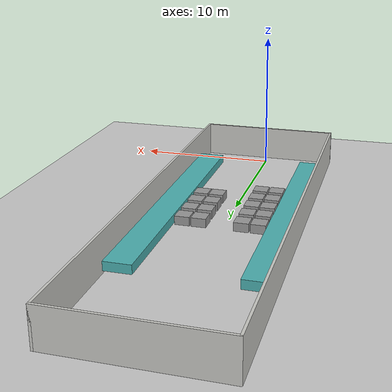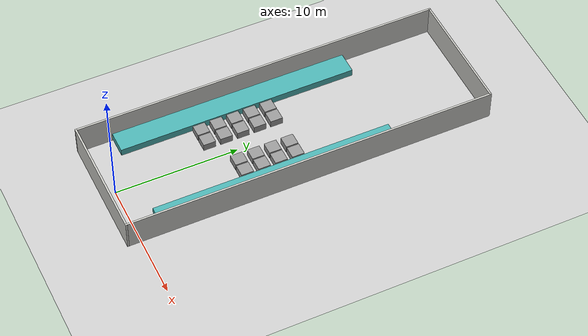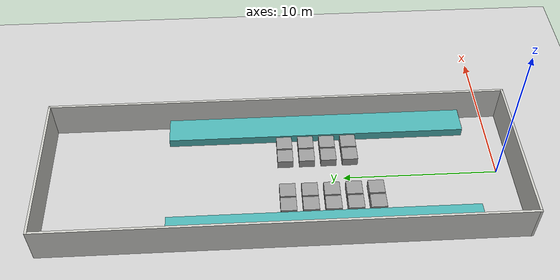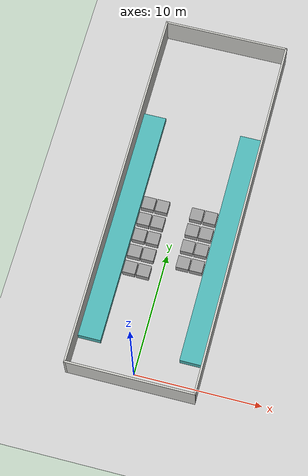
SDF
<sdf version="1.6">
 <world name="default">
  <model name="ground_plane">
   <static>1</static>
   <link name="link">
    <collision name="collision">
     <geometry><plane><normal>0 0 1</normal><size>100 100</size></plane></geometry>
     <surface>
      <contact><collide_bitmask>65535</collide_bitmask></contact>
      <friction><ode><mu>100</mu><mu2>50</mu2></ode></friction>
     </surface>
    </collision>
    <visual name="visual">
     <cast_shadows>0</cast_shadows>
     <geometry><plane><normal>0 0 1</normal><size>100 100</size></plane></geometry>
     <material>
      <script><uri>file://media/materials/scripts/gazebo.material</uri><name>Gazebo/Grey</name></script>
     </material>
    </visual>
   </link>
  </model>
  <model name="Estufa_2">
   <pose>0.00221 13.9727 0 0 -0 0</pose>
   <link name="Wall_0">
    <collision name="Wall_0_Collision">
     <geometry><box><size>30.15 0.15 2.5</size></box></geometry>
     <pose>0 0 1.25 0 -0 0</pose>
    </collision>
    <visual name="Wall_0_Visual">
     <pose>0 0 1.25 0 -0 0</pose>
     <geometry><box><size>30.15 0.15 2.5</size></box></geometry>
     <material>
      <script><uri>file://media/materials/scripts/gazebo.material</uri><name>Gazebo/CeilingTiled</name></script>
      <ambient>0.333333 0.341176 0.32549 1</ambient>
     </material>
     <meta><layer>0</layer></meta>
    </visual>
    <pose>-5 0 0 0 -0 1.5708</pose>
   </link>
   <link name="Wall_1">
    <collision name="Wall_1_Collision">
     <geometry><box><size>10.15 0.15 2.5</size></box></geometry>
     <pose>0 0 1.25 0 -0 0</pose>
    </collision>
    <visual name="Wall_1_Visual">
     <pose>0 0 1.25 0 -0 0</pose>
     <geometry><box><size>10.15 0.15 2.5</size></box></geometry>
     <material>
      <script><uri>file://media/materials/scripts/gazebo.material</uri><name>Gazebo/CeilingTiled</name></script>
      <ambient>0.333333 0.341176 0.32549 1</ambient>
     </material>
     <meta><layer>0</layer></meta>
    </visual>
    <pose>0 15 0 0 -0 0</pose>
   </link>
   <link name="Wall_2">
    <collision name="Wall_2_Collision">
     <geometry><box><size>30.15 0.15 2.5</size></box></geometry>
     <pose>0 0 1.25 0 -0 0</pose>
    </collision>
    <visual name="Wall_2_Visual">
     <pose>0 0 1.25 0 -0 0</pose>
     <geometry><box><size>30.15 0.15 2.5</size></box></geometry>
     <material>
      <script><uri>file://media/materials/scripts/gazebo.material</uri><name>Gazebo/CeilingTiled</name></script>
      <ambient>0.333333 0.341176 0.32549 1</ambient>
     </material>
     <meta><layer>0</layer></meta>
    </visual>
    <pose>5 0 0 0 -0 -1.5708</pose>
   </link>
   <link name="Wall_3">
    <collision name="Wall_3_Collision">
     <geometry><box><size>10.15 0.15 2.5</size></box></geometry>
     <pose>0 0 1.25 0 -0 0</pose>
    </collision>
    <visual name="Wall_3_Visual">
     <pose>0 0 1.25 0 -0 0</pose>
     <geometry><box><size>10.15 0.15 2.5</size></box></geometry>
     <material>
      <script><uri>file://media/materials/scripts/gazebo.material</uri><name>Gazebo/CeilingTiled</name></script>
      <ambient>0.333333 0.341176 0.32549 1</ambient>
     </material>
     <meta><layer>0</layer></meta>
    </visual>
    <pose>0 -15 0 0 -0 3.14159</pose>
   </link>
   <static>1</static>
  </model>
  <model name="Estufa-objetos">
   <link name="link_0_clone_3_clone">
    <inertial>
     <mass>1</mass>
     <inertia>
      <ixx>0.166667</ixx>
      <ixy>0</ixy>
      <ixz>0</ixz>
      <iyy>0.166667</iyy>
      <iyz>0</iyz>
      <izz>0.166667</izz>
     </inertia>
    </inertial>
    <pose>-4 6.5 0.5 0 -0 0</pose>
    <visual name="visual">
     <geometry><box><size>1.8 19.5 0.6</size></box></geometry>
     <material>
      <lighting>1</lighting>
      <script><uri>file://media/materials/scripts/gazebo.material</uri><name>Gazebo/Grey</name></script>
      <shader type="vertex"><normal_map>__default__</normal_map></shader>
      <ambient>0.3 0.7 0.7 1</ambient>
      <diffuse>0.7 0.7 0.7 1</diffuse>
      <specular>0.01 0.01 0.01 1</specular>
      <emissive>0 0 0 1</emissive>
     </material>
    </visual>
    <collision name="collision">
     <geometry><box><size>1.8 19.5 0.6</size></box></geometry>
     <surface>
      <friction>
       <ode><mu>1</mu><mu2>1</mu2><fdir1>0 0 0</fdir1><slip1>0</slip1><slip2>0</slip2></ode>
       <torsional>
        <coefficient>1</coefficient>
        <patch_radius>0</patch_radius>
        <surface_radius>0</surface_radius>
        <use_patch_radius>1</use_patch_radius>
        <ode><slip>0</slip></ode>
       </torsional>
      </friction>
      <bounce><restitution_coefficient>0</restitution_coefficient><threshold>1e+06</threshold></bounce>
      <contact>
       <collide_without_contact>0</collide_without_contact>
       <collide_without_contact_bitmask>1</collide_without_contact_bitmask>
       <collide_bitmask>1</collide_bitmask>
       <ode>
        <soft_cfm>0</soft_cfm>
        <soft_erp>0.2</soft_erp>
        <kp>1e+13</kp>
        <kd>1</kd>
        <max_vel>0.01</max_vel>
        <min_depth>0</min_depth>
       </ode>
       <bullet>
        <split_impulse>1</split_impulse>
        <split_impulse_penetration_threshold>-0.01</split_impulse_penetration_threshold>
        <soft_cfm>0</soft_cfm>
        <soft_erp>0.2</soft_erp>
        <kp>1e+13</kp>
        <kd>1</kd>
       </bullet>
      </contact>
     </surface>
    </collision>
   </link>
   <link name="link_0_clone_3_clone_clone">
    <inertial>
     <mass>1</mass>
     <inertia>
      <ixx>0.166667</ixx>
      <ixy>0</ixy>
      <ixz>0</ixz>
      <iyy>0.166667</iyy>
      <iyz>0</iyz>
      <izz>0.166667</izz>
     </inertia>
    </inertial>
    <pose>4 6.5 0.5 0 -0 0</pose>
    <visual name="visual">
     <geometry><box><size>1.8 19.5 0.6</size></box></geometry>
     <material>
      <lighting>1</lighting>
      <script><uri>file://media/materials/scripts/gazebo.material</uri><name>Gazebo/Grey</name></script>
      <shader type="vertex"><normal_map>__default__</normal_map></shader>
      <ambient>0.3 0.7 0.7 1</ambient>
      <diffuse>0.7 0.7 0.7 1</diffuse>
      <specular>0.01 0.01 0.01 1</specular>
      <emissive>0 0 0 1</emissive>
     </material>
    </visual>
    <collision name="collision">
     <geometry><box><size>1.8 19.5 0.6</size></box></geometry>
     <surface>
      <friction>
       <ode><mu>1</mu><mu2>1</mu2><fdir1>0 0 0</fdir1><slip1>0</slip1><slip2>0</slip2></ode>
       <torsional>
        <coefficient>1</coefficient>
        <patch_radius>0</patch_radius>
        <surface_radius>0</surface_radius>
        <use_patch_radius>1</use_patch_radius>
        <ode><slip>0</slip></ode>
       </torsional>
      </friction>
      <bounce><restitution_coefficient>0</restitution_coefficient><threshold>1e+06</threshold></bounce>
      <contact>
       <collide_without_contact>0</collide_without_contact>
       <collide_without_contact_bitmask>1</collide_without_contact_bitmask>
       <collide_bitmask>1</collide_bitmask>
       <ode>
        <soft_cfm>0</soft_cfm>
        <soft_erp>0.2</soft_erp>
        <kp>1e+13</kp>
        <kd>1</kd>
        <max_vel>0.01</max_vel>
        <min_depth>0</min_depth>
       </ode>
       <bullet>
        <split_impulse>1</split_impulse>
        <split_impulse_penetration_threshold>-0.01</split_impulse_penetration_threshold>
        <soft_cfm>0</soft_cfm>
        <soft_erp>0.2</soft_erp>
        <kp>1e+13</kp>
        <kd>1</kd>
       </bullet>
      </contact>
     </surface>
    </collision>
   </link>
   <link name="link_0_clone_clone_14">
    <inertial>
     <mass>1</mass>
     <inertia>
      <ixx>0.166667</ixx>
      <ixy>0</ixy>
      <ixz>0</ixz>
      <iyy>0.166667</iyy>
      <iyz>0</iyz>
      <izz>0.166667</izz>
     </inertia>
    </inertial>
    <pose>-1.4 3.1 0.5 0 -0 0</pose>
    <visual name="visual">
     <geometry><box><size>1 1 0.6</size></box></geometry>
     <material>
      <lighting>1</lighting>
      <script><uri>file://media/materials/scripts/gazebo.material</uri><name>Gazebo/Grey</name></script>
      <shader type="vertex"><normal_map>__default__</normal_map></shader>
      <ambient>0.3 0.3 0.3 1</ambient>
      <diffuse>0.7 0.7 0.7 1</diffuse>
      <specular>0.01 0.01 0.01 1</specular>
      <emissive>0 0 0 1</emissive>
     </material>
    </visual>
    <collision name="collision">
     <geometry><box><size>1 1 0.6</size></box></geometry>
     <surface>
      <friction>
       <ode><mu>1</mu><mu2>1</mu2><fdir1>0 0 0</fdir1><slip1>0</slip1><slip2>0</slip2></ode>
       <torsional>
        <coefficient>1</coefficient>
        <patch_radius>0</patch_radius>
        <surface_radius>0</surface_radius>
        <use_patch_radius>1</use_patch_radius>
        <ode><slip>0</slip></ode>
       </torsional>
      </friction>
      <bounce><restitution_coefficient>0</restitution_coefficient><threshold>1e+06</threshold></bounce>
      <contact>
       <collide_without_contact>0</collide_without_contact>
       <collide_without_contact_bitmask>1</collide_without_contact_bitmask>
       <collide_bitmask>1</collide_bitmask>
       <ode>
        <soft_cfm>0</soft_cfm>
        <soft_erp>0.2</soft_erp>
        <kp>1e+13</kp>
        <kd>1</kd>
        <max_vel>0.01</max_vel>
        <min_depth>0</min_depth>
       </ode>
       <bullet>
        <split_impulse>1</split_impulse>
        <split_impulse_penetration_threshold>-0.01</split_impulse_penetration_threshold>
        <soft_cfm>0</soft_cfm>
        <soft_erp>0.2</soft_erp>
        <kp>1e+13</kp>
        <kd>1</kd>
       </bullet>
      </contact>
     </surface>
    </collision>
   </link>
   <link name="link_0_clone_clone_15">
    <inertial>
     <mass>1</mass>
     <inertia>
      <ixx>0.166667</ixx>
      <ixy>0</ixy>
      <ixz>0</ixz>
      <iyy>0.166667</iyy>
      <iyz>0</iyz>
      <izz>0.166667</izz>
     </inertia>
    </inertial>
    <pose>-2.5 3.1 0.5 0 -0 0</pose>
    <visual name="visual">
     <geometry><box><size>1 1 0.6</size></box></geometry>
     <material>
      <lighting>1</lighting>
      <script><uri>file://media/materials/scripts/gazebo.material</uri><name>Gazebo/Grey</name></script>
      <shader type="vertex"><normal_map>__default__</normal_map></shader>
      <ambient>0.3 0.3 0.3 1</ambient>
      <diffuse>0.7 0.7 0.7 1</diffuse>
      <specular>0.01 0.01 0.01 1</specular>
      <emissive>0 0 0 1</emissive>
     </material>
    </visual>
    <collision name="collision">
     <geometry><box><size>1 1 0.6</size></box></geometry>
     <surface>
      <friction>
       <ode><mu>1</mu><mu2>1</mu2><fdir1>0 0 0</fdir1><slip1>0</slip1><slip2>0</slip2></ode>
       <torsional>
        <coefficient>1</coefficient>
        <patch_radius>0</patch_radius>
        <surface_radius>0</surface_radius>
        <use_patch_radius>1</use_patch_radius>
        <ode><slip>0</slip></ode>
       </torsional>
      </friction>
      <bounce><restitution_coefficient>0</restitution_coefficient><threshold>1e+06</threshold></bounce>
      <contact>
       <collide_without_contact>0</collide_without_contact>
       <collide_without_contact_bitmask>1</collide_without_contact_bitmask>
       <collide_bitmask>1</collide_bitmask>
       <ode>
        <soft_cfm>0</soft_cfm>
        <soft_erp>0.2</soft_erp>
        <kp>1e+13</kp>
        <kd>1</kd>
        <max_vel>0.01</max_vel>
        <min_depth>0</min_depth>
       </ode>
       <bullet>
        <split_impulse>1</split_impulse>
        <split_impulse_penetration_threshold>-0.01</split_impulse_penetration_threshold>
        <soft_cfm>0</soft_cfm>
        <soft_erp>0.2</soft_erp>
        <kp>1e+13</kp>
        <kd>1</kd>
       </bullet>
      </contact>
     </surface>
    </collision>
   </link>
   <link name="link_0_clone_clone_16">
    <inertial>
     <mass>1</mass>
     <inertia>
      <ixx>0.166667</ixx>
      <ixy>0</ixy>
      <ixz>0</ixz>
      <iyy>0.166667</iyy>
      <iyz>0</iyz>
      <izz>0.166667</izz>
     </inertia>
    </inertial>
    <pose>2.5 4.5 0.5 0 -0 0</pose>
    <visual name="visual">
     <geometry><box><size>1 1 0.6</size></box></geometry>
     <material>
      <lighting>1</lighting>
      <script><uri>file://media/materials/scripts/gazebo.material</uri><name>Gazebo/Grey</name></script>
      <shader type="vertex"><normal_map>__default__</normal_map></shader>
      <ambient>0.3 0.3 0.3 1</ambient>
      <diffuse>0.7 0.7 0.7 1</diffuse>
      <specular>0.01 0.01 0.01 1</specular>
      <emissive>0 0 0 1</emissive>
     </material>
    </visual>
    <collision name="collision">
     <geometry><box><size>1 1 0.6</size></box></geometry>
     <surface>
      <friction>
       <ode><mu>1</mu><mu2>1</mu2><fdir1>0 0 0</fdir1><slip1>0</slip1><slip2>0</slip2></ode>
       <torsional>
        <coefficient>1</coefficient>
        <patch_radius>0</patch_radius>
        <surface_radius>0</surface_radius>
        <use_patch_radius>1</use_patch_radius>
        <ode><slip>0</slip></ode>
       </torsional>
      </friction>
      <bounce><restitution_coefficient>0</restitution_coefficient><threshold>1e+06</threshold></bounce>
      <contact>
       <collide_without_contact>0</collide_without_contact>
       <collide_without_contact_bitmask>1</collide_without_contact_bitmask>
       <collide_bitmask>1</collide_bitmask>
       <ode>
        <soft_cfm>0</soft_cfm>
        <soft_erp>0.2</soft_erp>
        <kp>1e+13</kp>
        <kd>1</kd>
        <max_vel>0.01</max_vel>
        <min_depth>0</min_depth>
       </ode>
       <bullet>
        <split_impulse>1</split_impulse>
        <split_impulse_penetration_threshold>-0.01</split_impulse_penetration_threshold>
        <soft_cfm>0</soft_cfm>
        <soft_erp>0.2</soft_erp>
        <kp>1e+13</kp>
        <kd>1</kd>
       </bullet>
      </contact>
     </surface>
    </collision>
   </link>
   <link name="link_0_clone_clone_17">
    <inertial>
     <mass>1</mass>
     <inertia>
      <ixx>0.166667</ixx>
      <ixy>0</ixy>
      <ixz>0</ixz>
      <iyy>0.166667</iyy>
      <iyz>0</iyz>
      <izz>0.166667</izz>
     </inertia>
    </inertial>
    <pose>1.4 4.5 0.5 0 -0 0</pose>
    <visual name="visual">
     <geometry><box><size>1 1 0.6</size></box></geometry>
     <material>
      <lighting>1</lighting>
      <script><uri>file://media/materials/scripts/gazebo.material</uri><name>Gazebo/Grey</name></script>
      <shader type="vertex"><normal_map>__default__</normal_map></shader>
      <ambient>0.3 0.3 0.3 1</ambient>
      <diffuse>0.7 0.7 0.7 1</diffuse>
      <specular>0.01 0.01 0.01 1</specular>
      <emissive>0 0 0 1</emissive>
     </material>
    </visual>
    <collision name="collision">
     <geometry><box><size>1 1 0.6</size></box></geometry>
     <surface>
      <friction>
       <ode><mu>1</mu><mu2>1</mu2><fdir1>0 0 0</fdir1><slip1>0</slip1><slip2>0</slip2></ode>
       <torsional>
        <coefficient>1</coefficient>
        <patch_radius>0</patch_radius>
        <surface_radius>0</surface_radius>
        <use_patch_radius>1</use_patch_radius>
        <ode><slip>0</slip></ode>
       </torsional>
      </friction>
      <bounce><restitution_coefficient>0</restitution_coefficient><threshold>1e+06</threshold></bounce>
      <contact>
       <collide_without_contact>0</collide_without_contact>
       <collide_without_contact_bitmask>1</collide_without_contact_bitmask>
       <collide_bitmask>1</collide_bitmask>
       <ode>
        <soft_cfm>0</soft_cfm>
        <soft_erp>0.2</soft_erp>
        <kp>1e+13</kp>
        <kd>1</kd>
        <max_vel>0.01</max_vel>
        <min_depth>0</min_depth>
       </ode>
       <bullet>
        <split_impulse>1</split_impulse>
        <split_impulse_penetration_threshold>-0.01</split_impulse_penetration_threshold>
        <soft_cfm>0</soft_cfm>
        <soft_erp>0.2</soft_erp>
        <kp>1e+13</kp>
        <kd>1</kd>
       </bullet>
      </contact>
     </surface>
    </collision>
   </link>
   <link name="link_0_clone_clone_18">
    <inertial>
     <mass>1</mass>
     <inertia>
      <ixx>0.166667</ixx>
      <ixy>0</ixy>
      <ixz>0</ixz>
      <iyy>0.166667</iyy>
      <iyz>0</iyz>
      <izz>0.166667</izz>
     </inertia>
    </inertial>
    <pose>-1.4 4.5 0.5 0 -0 0</pose>
    <visual name="visual">
     <geometry><box><size>1 1 0.6</size></box></geometry>
     <material>
      <lighting>1</lighting>
      <script><uri>file://media/materials/scripts/gazebo.material</uri><name>Gazebo/Grey</name></script>
      <shader type="vertex"><normal_map>__default__</normal_map></shader>
      <ambient>0.3 0.3 0.3 1</ambient>
      <diffuse>0.7 0.7 0.7 1</diffuse>
      <specular>0.01 0.01 0.01 1</specular>
      <emissive>0 0 0 1</emissive>
     </material>
    </visual>
    <collision name="collision">
     <geometry><box><size>1 1 0.6</size></box></geometry>
     <surface>
      <friction>
       <ode><mu>1</mu><mu2>1</mu2><fdir1>0 0 0</fdir1><slip1>0</slip1><slip2>0</slip2></ode>
       <torsional>
        <coefficient>1</coefficient>
        <patch_radius>0</patch_radius>
        <surface_radius>0</surface_radius>
        <use_patch_radius>1</use_patch_radius>
        <ode><slip>0</slip></ode>
       </torsional>
      </friction>
      <bounce><restitution_coefficient>0</restitution_coefficient><threshold>1e+06</threshold></bounce>
      <contact>
       <collide_without_contact>0</collide_without_contact>
       <collide_without_contact_bitmask>1</collide_without_contact_bitmask>
       <collide_bitmask>1</collide_bitmask>
       <ode>
        <soft_cfm>0</soft_cfm>
        <soft_erp>0.2</soft_erp>
        <kp>1e+13</kp>
        <kd>1</kd>
        <max_vel>0.01</max_vel>
        <min_depth>0</min_depth>
       </ode>
       <bullet>
        <split_impulse>1</split_impulse>
        <split_impulse_penetration_threshold>-0.01</split_impulse_penetration_threshold>
        <soft_cfm>0</soft_cfm>
        <soft_erp>0.2</soft_erp>
        <kp>1e+13</kp>
        <kd>1</kd>
       </bullet>
      </contact>
     </surface>
    </collision>
   </link>
   <link name="link_0_clone_clone_19">
    <inertial>
     <mass>1</mass>
     <inertia>
      <ixx>0.166667</ixx>
      <ixy>0</ixy>
      <ixz>0</ixz>
      <iyy>0.166667</iyy>
      <iyz>0</iyz>
      <izz>0.166667</izz>
     </inertia>
    </inertial>
    <pose>-2.5 4.5 0.5 0 -0 0</pose>
    <visual name="visual">
     <geometry><box><size>1 1 0.6</size></box></geometry>
     <material>
      <lighting>1</lighting>
      <script><uri>file://media/materials/scripts/gazebo.material</uri><name>Gazebo/Grey</name></script>
      <shader type="vertex"><normal_map>__default__</normal_map></shader>
      <ambient>0.3 0.3 0.3 1</ambient>
      <diffuse>0.7 0.7 0.7 1</diffuse>
      <specular>0.01 0.01 0.01 1</specular>
      <emissive>0 0 0 1</emissive>
     </material>
    </visual>
    <collision name="collision">
     <geometry><box><size>1 1 0.6</size></box></geometry>
     <surface>
      <friction>
       <ode><mu>1</mu><mu2>1</mu2><fdir1>0 0 0</fdir1><slip1>0</slip1><slip2>0</slip2></ode>
       <torsional>
        <coefficient>1</coefficient>
        <patch_radius>0</patch_radius>
        <surface_radius>0</surface_radius>
        <use_patch_radius>1</use_patch_radius>
        <ode><slip>0</slip></ode>
       </torsional>
      </friction>
      <bounce><restitution_coefficient>0</restitution_coefficient><threshold>1e+06</threshold></bounce>
      <contact>
       <collide_without_contact>0</collide_without_contact>
       <collide_without_contact_bitmask>1</collide_without_contact_bitmask>
       <collide_bitmask>1</collide_bitmask>
       <ode>
        <soft_cfm>0</soft_cfm>
        <soft_erp>0.2</soft_erp>
        <kp>1e+13</kp>
        <kd>1</kd>
        <max_vel>0.01</max_vel>
        <min_depth>0</min_depth>
       </ode>
       <bullet>
        <split_impulse>1</split_impulse>
        <split_impulse_penetration_threshold>-0.01</split_impulse_penetration_threshold>
        <soft_cfm>0</soft_cfm>
        <soft_erp>0.2</soft_erp>
        <kp>1e+13</kp>
        <kd>1</kd>
       </bullet>
      </contact>
     </surface>
    </collision>
   </link>
   <link name="link_0_clone_clone_20">
    <inertial>
     <mass>1</mass>
     <inertia>
      <ixx>0.166667</ixx>
      <ixy>0</ixy>
      <ixz>0</ixz>
      <iyy>0.166667</iyy>
      <iyz>0</iyz>
      <izz>0.166667</izz>
     </inertia>
    </inertial>
    <pose>2.5 5.9 0.5 0 -0 0</pose>
    <visual name="visual">
     <geometry><box><size>1 1 0.6</size></box></geometry>
     <material>
      <lighting>1</lighting>
      <script><uri>file://media/materials/scripts/gazebo.material</uri><name>Gazebo/Grey</name></script>
      <shader type="vertex"><normal_map>__default__</normal_map></shader>
      <ambient>0.3 0.3 0.3 1</ambient>
      <diffuse>0.7 0.7 0.7 1</diffuse>
      <specular>0.01 0.01 0.01 1</specular>
      <emissive>0 0 0 1</emissive>
     </material>
    </visual>
    <collision name="collision">
     <geometry><box><size>1 1 0.6</size></box></geometry>
     <surface>
      <friction>
       <ode><mu>1</mu><mu2>1</mu2><fdir1>0 0 0</fdir1><slip1>0</slip1><slip2>0</slip2></ode>
       <torsional>
        <coefficient>1</coefficient>
        <patch_radius>0</patch_radius>
        <surface_radius>0</surface_radius>
        <use_patch_radius>1</use_patch_radius>
        <ode><slip>0</slip></ode>
       </torsional>
      </friction>
      <bounce><restitution_coefficient>0</restitution_coefficient><threshold>1e+06</threshold></bounce>
      <contact>
       <collide_without_contact>0</collide_without_contact>
       <collide_without_contact_bitmask>1</collide_without_contact_bitmask>
       <collide_bitmask>1</collide_bitmask>
       <ode>
        <soft_cfm>0</soft_cfm>
        <soft_erp>0.2</soft_erp>
        <kp>1e+13</kp>
        <kd>1</kd>
        <max_vel>0.01</max_vel>
        <min_depth>0</min_depth>
       </ode>
       <bullet>
        <split_impulse>1</split_impulse>
        <split_impulse_penetration_threshold>-0.01</split_impulse_penetration_threshold>
        <soft_cfm>0</soft_cfm>
        <soft_erp>0.2</soft_erp>
        <kp>1e+13</kp>
        <kd>1</kd>
       </bullet>
      </contact>
     </surface>
    </collision>
   </link>
   <link name="link_0_clone_clone_21">
    <inertial>
     <mass>1</mass>
     <inertia>
      <ixx>0.166667</ixx>
      <ixy>0</ixy>
      <ixz>0</ixz>
      <iyy>0.166667</iyy>
      <iyz>0</iyz>
      <izz>0.166667</izz>
     </inertia>
    </inertial>
    <pose>1.4 5.9 0.5 0 -0 0</pose>
    <visual name="visual">
     <geometry><box><size>1 1 0.6</size></box></geometry>
     <material>
      <lighting>1</lighting>
      <script><uri>file://media/materials/scripts/gazebo.material</uri><name>Gazebo/Grey</name></script>
      <shader type="vertex"><normal_map>__default__</normal_map></shader>
      <ambient>0.3 0.3 0.3 1</ambient>
      <diffuse>0.7 0.7 0.7 1</diffuse>
      <specular>0.01 0.01 0.01 1</specular>
      <emissive>0 0 0 1</emissive>
     </material>
    </visual>
    <collision name="collision">
     <geometry><box><size>1 1 0.6</size></box></geometry>
     <surface>
      <friction>
       <ode><mu>1</mu><mu2>1</mu2><fdir1>0 0 0</fdir1><slip1>0</slip1><slip2>0</slip2></ode>
       <torsional>
        <coefficient>1</coefficient>
        <patch_radius>0</patch_radius>
        <surface_radius>0</surface_radius>
        <use_patch_radius>1</use_patch_radius>
        <ode><slip>0</slip></ode>
       </torsional>
      </friction>
      <bounce><restitution_coefficient>0</restitution_coefficient><threshold>1e+06</threshold></bounce>
      <contact>
       <collide_without_contact>0</collide_without_contact>
       <collide_without_contact_bitmask>1</collide_without_contact_bitmask>
       <collide_bitmask>1</collide_bitmask>
       <ode>
        <soft_cfm>0</soft_cfm>
        <soft_erp>0.2</soft_erp>
        <kp>1e+13</kp>
        <kd>1</kd>
        <max_vel>0.01</max_vel>
        <min_depth>0</min_depth>
       </ode>
       <bullet>
        <split_impulse>1</split_impulse>
        <split_impulse_penetration_threshold>-0.01</split_impulse_penetration_threshold>
        <soft_cfm>0</soft_cfm>
        <soft_erp>0.2</soft_erp>
        <kp>1e+13</kp>
        <kd>1</kd>
       </bullet>
      </contact>
     </surface>
    </collision>
   </link>
   <link name="link_0_clone_clone_22">
    <inertial>
     <mass>1</mass>
     <inertia>
      <ixx>0.166667</ixx>
      <ixy>0</ixy>
      <ixz>0</ixz>
      <iyy>0.166667</iyy>
      <iyz>0</iyz>
      <izz>0.166667</izz>
     </inertia>
    </inertial>
    <pose>-1.4 5.9 0.5 0 -0 0</pose>
    <visual name="visual">
     <geometry><box><size>1 1 0.6</size></box></geometry>
     <material>
      <lighting>1</lighting>
      <script><uri>file://media/materials/scripts/gazebo.material</uri><name>Gazebo/Grey</name></script>
      <shader type="vertex"><normal_map>__default__</normal_map></shader>
      <ambient>0.3 0.3 0.3 1</ambient>
      <diffuse>0.7 0.7 0.7 1</diffuse>
      <specular>0.01 0.01 0.01 1</specular>
      <emissive>0 0 0 1</emissive>
     </material>
    </visual>
    <collision name="collision">
     <geometry><box><size>1 1 0.6</size></box></geometry>
     <surface>
      <friction>
       <ode><mu>1</mu><mu2>1</mu2><fdir1>0 0 0</fdir1><slip1>0</slip1><slip2>0</slip2></ode>
       <torsional>
        <coefficient>1</coefficient>
        <patch_radius>0</patch_radius>
        <surface_radius>0</surface_radius>
        <use_patch_radius>1</use_patch_radius>
        <ode><slip>0</slip></ode>
       </torsional>
      </friction>
      <bounce><restitution_coefficient>0</restitution_coefficient><threshold>1e+06</threshold></bounce>
      <contact>
       <collide_without_contact>0</collide_without_contact>
       <collide_without_contact_bitmask>1</collide_without_contact_bitmask>
       <collide_bitmask>1</collide_bitmask>
       <ode>
        <soft_cfm>0</soft_cfm>
        <soft_erp>0.2</soft_erp>
        <kp>1e+13</kp>
        <kd>1</kd>
        <max_vel>0.01</max_vel>
        <min_depth>0</min_depth>
       </ode>
       <bullet>
        <split_impulse>1</split_impulse>
        <split_impulse_penetration_threshold>-0.01</split_impulse_penetration_threshold>
        <soft_cfm>0</soft_cfm>
        <soft_erp>0.2</soft_erp>
        <kp>1e+13</kp>
        <kd>1</kd>
       </bullet>
      </contact>
     </surface>
    </collision>
   </link>
   <link name="link_0_clone_clone_23">
    <inertial>
     <mass>1</mass>
     <inertia>
      <ixx>0.166667</ixx>
      <ixy>0</ixy>
      <ixz>0</ixz>
      <iyy>0.166667</iyy>
      <iyz>0</iyz>
      <izz>0.166667</izz>
     </inertia>
    </inertial>
    <pose>-2.5 5.9 0.5 0 -0 0</pose>
    <visual name="visual">
     <geometry><box><size>1 1 0.6</size></box></geometry>
     <material>
      <lighting>1</lighting>
      <script><uri>file://media/materials/scripts/gazebo.material</uri><name>Gazebo/Grey</name></script>
      <shader type="vertex"><normal_map>__default__</normal_map></shader>
      <ambient>0.3 0.3 0.3 1</ambient>
      <diffuse>0.7 0.7 0.7 1</diffuse>
      <specular>0.01 0.01 0.01 1</specular>
      <emissive>0 0 0 1</emissive>
     </material>
    </visual>
    <collision name="collision">
     <geometry><box><size>1 1 0.6</size></box></geometry>
     <surface>
      <friction>
       <ode><mu>1</mu><mu2>1</mu2><fdir1>0 0 0</fdir1><slip1>0</slip1><slip2>0</slip2></ode>
       <torsional>
        <coefficient>1</coefficient>
        <patch_radius>0</patch_radius>
        <surface_radius>0</surface_radius>
        <use_patch_radius>1</use_patch_radius>
        <ode><slip>0</slip></ode>
       </torsional>
      </friction>
      <bounce><restitution_coefficient>0</restitution_coefficient><threshold>1e+06</threshold></bounce>
      <contact>
       <collide_without_contact>0</collide_without_contact>
       <collide_without_contact_bitmask>1</collide_without_contact_bitmask>
       <collide_bitmask>1</collide_bitmask>
       <ode>
        <soft_cfm>0</soft_cfm>
        <soft_erp>0.2</soft_erp>
        <kp>1e+13</kp>
        <kd>1</kd>
        <max_vel>0.01</max_vel>
        <min_depth>0</min_depth>
       </ode>
       <bullet>
        <split_impulse>1</split_impulse>
        <split_impulse_penetration_threshold>-0.01</split_impulse_penetration_threshold>
        <soft_cfm>0</soft_cfm>
        <soft_erp>0.2</soft_erp>
        <kp>1e+13</kp>
        <kd>1</kd>
       </bullet>
      </contact>
     </surface>
    </collision>
   </link>
   <link name="link_0_clone_clone_24">
    <inertial>
     <mass>1</mass>
     <inertia>
      <ixx>0.166667</ixx>
      <ixy>0</ixy>
      <ixz>0</ixz>
      <iyy>0.166667</iyy>
      <iyz>0</iyz>
      <izz>0.166667</izz>
     </inertia>
    </inertial>
    <pose>2.5 7.3 0.5 0 -0 0</pose>
    <visual name="visual">
     <geometry><box><size>1 1 0.6</size></box></geometry>
     <material>
      <lighting>1</lighting>
      <script><uri>file://media/materials/scripts/gazebo.material</uri><name>Gazebo/Grey</name></script>
      <shader type="vertex"><normal_map>__default__</normal_map></shader>
      <ambient>0.3 0.3 0.3 1</ambient>
      <diffuse>0.7 0.7 0.7 1</diffuse>
      <specular>0.01 0.01 0.01 1</specular>
      <emissive>0 0 0 1</emissive>
     </material>
    </visual>
    <collision name="collision">
     <geometry><box><size>1 1 0.6</size></box></geometry>
     <surface>
      <friction>
       <ode><mu>1</mu><mu2>1</mu2><fdir1>0 0 0</fdir1><slip1>0</slip1><slip2>0</slip2></ode>
       <torsional>
        <coefficient>1</coefficient>
        <patch_radius>0</patch_radius>
        <surface_radius>0</surface_radius>
        <use_patch_radius>1</use_patch_radius>
        <ode><slip>0</slip></ode>
       </torsional>
      </friction>
      <bounce><restitution_coefficient>0</restitution_coefficient><threshold>1e+06</threshold></bounce>
      <contact>
       <collide_without_contact>0</collide_without_contact>
       <collide_without_contact_bitmask>1</collide_without_contact_bitmask>
       <collide_bitmask>1</collide_bitmask>
       <ode>
        <soft_cfm>0</soft_cfm>
        <soft_erp>0.2</soft_erp>
        <kp>1e+13</kp>
        <kd>1</kd>
        <max_vel>0.01</max_vel>
        <min_depth>0</min_depth>
       </ode>
       <bullet>
        <split_impulse>1</split_impulse>
        <split_impulse_penetration_threshold>-0.01</split_impulse_penetration_threshold>
        <soft_cfm>0</soft_cfm>
        <soft_erp>0.2</soft_erp>
        <kp>1e+13</kp>
        <kd>1</kd>
       </bullet>
      </contact>
     </surface>
    </collision>
   </link>
   <link name="link_0_clone_clone_25">
    <inertial>
     <mass>1</mass>
     <inertia>
      <ixx>0.166667</ixx>
      <ixy>0</ixy>
      <ixz>0</ixz>
      <iyy>0.166667</iyy>
      <iyz>0</iyz>
      <izz>0.166667</izz>
     </inertia>
    </inertial>
    <pose>1.4 7.3 0.5 0 -0 0</pose>
    <visual name="visual">
     <geometry><box><size>1 1 0.6</size></box></geometry>
     <material>
      <lighting>1</lighting>
      <script><uri>file://media/materials/scripts/gazebo.material</uri><name>Gazebo/Grey</name></script>
      <shader type="vertex"><normal_map>__default__</normal_map></shader>
      <ambient>0.3 0.3 0.3 1</ambient>
      <diffuse>0.7 0.7 0.7 1</diffuse>
      <specular>0.01 0.01 0.01 1</specular>
      <emissive>0 0 0 1</emissive>
     </material>
    </visual>
    <collision name="collision">
     <geometry><box><size>1 1 0.6</size></box></geometry>
     <surface>
      <friction>
       <ode><mu>1</mu><mu2>1</mu2><fdir1>0 0 0</fdir1><slip1>0</slip1><slip2>0</slip2></ode>
       <torsional>
        <coefficient>1</coefficient>
        <patch_radius>0</patch_radius>
        <surface_radius>0</surface_radius>
        <use_patch_radius>1</use_patch_radius>
        <ode><slip>0</slip></ode>
       </torsional>
      </friction>
      <bounce><restitution_coefficient>0</restitution_coefficient><threshold>1e+06</threshold></bounce>
      <contact>
       <collide_without_contact>0</collide_without_contact>
       <collide_without_contact_bitmask>1</collide_without_contact_bitmask>
       <collide_bitmask>1</collide_bitmask>
       <ode>
        <soft_cfm>0</soft_cfm>
        <soft_erp>0.2</soft_erp>
        <kp>1e+13</kp>
        <kd>1</kd>
        <max_vel>0.01</max_vel>
        <min_depth>0</min_depth>
       </ode>
       <bullet>
        <split_impulse>1</split_impulse>
        <split_impulse_penetration_threshold>-0.01</split_impulse_penetration_threshold>
        <soft_cfm>0</soft_cfm>
        <soft_erp>0.2</soft_erp>
        <kp>1e+13</kp>
        <kd>1</kd>
       </bullet>
      </contact>
     </surface>
    </collision>
   </link>
   <link name="link_0_clone_clone_26">
    <inertial>
     <mass>1</mass>
     <inertia>
      <ixx>0.166667</ixx>
      <ixy>0</ixy>
      <ixz>0</ixz>
      <iyy>0.166667</iyy>
      <iyz>0</iyz>
      <izz>0.166667</izz>
     </inertia>
    </inertial>
    <pose>-1.4 7.3 0.5 0 -0 0</pose>
    <visual name="visual">
     <geometry><box><size>1 1 0.6</size></box></geometry>
     <material>
      <lighting>1</lighting>
      <script><uri>file://media/materials/scripts/gazebo.material</uri><name>Gazebo/Grey</name></script>
      <shader type="vertex"><normal_map>__default__</normal_map></shader>
      <ambient>0.3 0.3 0.3 1</ambient>
      <diffuse>0.7 0.7 0.7 1</diffuse>
      <specular>0.01 0.01 0.01 1</specular>
      <emissive>0 0 0 1</emissive>
     </material>
    </visual>
    <collision name="collision">
     <geometry><box><size>1 1 0.6</size></box></geometry>
     <surface>
      <friction>
       <ode><mu>1</mu><mu2>1</mu2><fdir1>0 0 0</fdir1><slip1>0</slip1><slip2>0</slip2></ode>
       <torsional>
        <coefficient>1</coefficient>
        <patch_radius>0</patch_radius>
        <surface_radius>0</surface_radius>
        <use_patch_radius>1</use_patch_radius>
        <ode><slip>0</slip></ode>
       </torsional>
      </friction>
      <bounce><restitution_coefficient>0</restitution_coefficient><threshold>1e+06</threshold></bounce>
      <contact>
       <collide_without_contact>0</collide_without_contact>
       <collide_without_contact_bitmask>1</collide_without_contact_bitmask>
       <collide_bitmask>1</collide_bitmask>
       <ode>
        <soft_cfm>0</soft_cfm>
        <soft_erp>0.2</soft_erp>
        <kp>1e+13</kp>
        <kd>1</kd>
        <max_vel>0.01</max_vel>
        <min_depth>0</min_depth>
       </ode>
       <bullet>
        <split_impulse>1</split_impulse>
        <split_impulse_penetration_threshold>-0.01</split_impulse_penetration_threshold>
        <soft_cfm>0</soft_cfm>
        <soft_erp>0.2</soft_erp>
        <kp>1e+13</kp>
        <kd>1</kd>
       </bullet>
      </contact>
     </surface>
    </collision>
   </link>
   <link name="link_0_clone_clone_27">
    <inertial>
     <mass>1</mass>
     <inertia>
      <ixx>0.166667</ixx>
      <ixy>0</ixy>
      <ixz>0</ixz>
      <iyy>0.166667</iyy>
      <iyz>0</iyz>
      <izz>0.166667</izz>
     </inertia>
    </inertial>
    <pose>-2.5 7.3 0.5 0 -0 0</pose>
    <visual name="visual">
     <geometry><box><size>1 1 0.6</size></box></geometry>
     <material>
      <lighting>1</lighting>
      <script><uri>file://media/materials/scripts/gazebo.material</uri><name>Gazebo/Grey</name></script>
      <shader type="vertex"><normal_map>__default__</normal_map></shader>
      <ambient>0.3 0.3 0.3 1</ambient>
      <diffuse>0.7 0.7 0.7 1</diffuse>
      <specular>0.01 0.01 0.01 1</specular>
      <emissive>0 0 0 1</emissive>
     </material>
    </visual>
    <collision name="collision">
     <geometry><box><size>1 1 0.6</size></box></geometry>
     <surface>
      <friction>
       <ode><mu>1</mu><mu2>1</mu2><fdir1>0 0 0</fdir1><slip1>0</slip1><slip2>0</slip2></ode>
       <torsional>
        <coefficient>1</coefficient>
        <patch_radius>0</patch_radius>
        <surface_radius>0</surface_radius>
        <use_patch_radius>1</use_patch_radius>
        <ode><slip>0</slip></ode>
       </torsional>
      </friction>
      <bounce><restitution_coefficient>0</restitution_coefficient><threshold>1e+06</threshold></bounce>
      <contact>
       <collide_without_contact>0</collide_without_contact>
       <collide_without_contact_bitmask>1</collide_without_contact_bitmask>
       <collide_bitmask>1</collide_bitmask>
       <ode>
        <soft_cfm>0</soft_cfm>
        <soft_erp>0.2</soft_erp>
        <kp>1e+13</kp>
        <kd>1</kd>
        <max_vel>0.01</max_vel>
        <min_depth>0</min_depth>
       </ode>
       <bullet>
        <split_impulse>1</split_impulse>
        <split_impulse_penetration_threshold>-0.01</split_impulse_penetration_threshold>
        <soft_cfm>0</soft_cfm>
        <soft_erp>0.2</soft_erp>
        <kp>1e+13</kp>
        <kd>1</kd>
       </bullet>
      </contact>
     </surface>
    </collision>
   </link>
   <link name="link_0_clone_clone_28">
    <inertial>
     <mass>1</mass>
     <inertia>
      <ixx>0.166667</ixx>
      <ixy>0</ixy>
      <ixz>0</ixz>
      <iyy>0.166667</iyy>
      <iyz>0</iyz>
      <izz>0.166667</izz>
     </inertia>
    </inertial>
    <pose>2.5 8.7 0.5 0 -0 0</pose>
    <visual name="visual">
     <geometry><box><size>1 1 0.6</size></box></geometry>
     <material>
      <lighting>1</lighting>
      <script><uri>file://media/materials/scripts/gazebo.material</uri><name>Gazebo/Grey</name></script>
      <shader type="vertex"><normal_map>__default__</normal_map></shader>
      <ambient>0.3 0.3 0.3 1</ambient>
      <diffuse>0.7 0.7 0.7 1</diffuse>
      <specular>0.01 0.01 0.01 1</specular>
      <emissive>0 0 0 1</emissive>
     </material>
    </visual>
    <collision name="collision">
     <geometry><box><size>1 1 0.6</size></box></geometry>
     <surface>
      <friction>
       <ode><mu>1</mu><mu2>1</mu2><fdir1>0 0 0</fdir1><slip1>0</slip1><slip2>0</slip2></ode>
       <torsional>
        <coefficient>1</coefficient>
        <patch_radius>0</patch_radius>
        <surface_radius>0</surface_radius>
        <use_patch_radius>1</use_patch_radius>
        <ode><slip>0</slip></ode>
       </torsional>
      </friction>
      <bounce><restitution_coefficient>0</restitution_coefficient><threshold>1e+06</threshold></bounce>
      <contact>
       <collide_without_contact>0</collide_without_contact>
       <collide_without_contact_bitmask>1</collide_without_contact_bitmask>
       <collide_bitmask>1</collide_bitmask>
       <ode>
        <soft_cfm>0</soft_cfm>
        <soft_erp>0.2</soft_erp>
        <kp>1e+13</kp>
        <kd>1</kd>
        <max_vel>0.01</max_vel>
        <min_depth>0</min_depth>
       </ode>
       <bullet>
        <split_impulse>1</split_impulse>
        <split_impulse_penetration_threshold>-0.01</split_impulse_penetration_threshold>
        <soft_cfm>0</soft_cfm>
        <soft_erp>0.2</soft_erp>
        <kp>1e+13</kp>
        <kd>1</kd>
       </bullet>
      </contact>
     </surface>
    </collision>
   </link>
   <link name="link_0_clone_clone_29">
    <inertial>
     <mass>1</mass>
     <inertia>
      <ixx>0.166667</ixx>
      <ixy>0</ixy>
      <ixz>0</ixz>
      <iyy>0.166667</iyy>
      <iyz>0</iyz>
      <izz>0.166667</izz>
     </inertia>
    </inertial>
    <pose>1.4 8.7 0.5 0 -0 0</pose>
    <visual name="visual">
     <geometry><box><size>1 1 0.6</size></box></geometry>
     <material>
      <lighting>1</lighting>
      <script><uri>file://media/materials/scripts/gazebo.material</uri><name>Gazebo/Grey</name></script>
      <shader type="vertex"><normal_map>__default__</normal_map></shader>
      <ambient>0.3 0.3 0.3 1</ambient>
      <diffuse>0.7 0.7 0.7 1</diffuse>
      <specular>0.01 0.01 0.01 1</specular>
      <emissive>0 0 0 1</emissive>
     </material>
    </visual>
    <collision name="collision">
     <geometry><box><size>1 1 0.6</size></box></geometry>
     <surface>
      <friction>
       <ode><mu>1</mu><mu2>1</mu2><fdir1>0 0 0</fdir1><slip1>0</slip1><slip2>0</slip2></ode>
       <torsional>
        <coefficient>1</coefficient>
        <patch_radius>0</patch_radius>
        <surface_radius>0</surface_radius>
        <use_patch_radius>1</use_patch_radius>
        <ode><slip>0</slip></ode>
       </torsional>
      </friction>
      <bounce><restitution_coefficient>0</restitution_coefficient><threshold>1e+06</threshold></bounce>
      <contact>
       <collide_without_contact>0</collide_without_contact>
       <collide_without_contact_bitmask>1</collide_without_contact_bitmask>
       <collide_bitmask>1</collide_bitmask>
       <ode>
        <soft_cfm>0</soft_cfm>
        <soft_erp>0.2</soft_erp>
        <kp>1e+13</kp>
        <kd>1</kd>
        <max_vel>0.01</max_vel>
        <min_depth>0</min_depth>
       </ode>
       <bullet>
        <split_impulse>1</split_impulse>
        <split_impulse_penetration_threshold>-0.01</split_impulse_penetration_threshold>
        <soft_cfm>0</soft_cfm>
        <soft_erp>0.2</soft_erp>
        <kp>1e+13</kp>
        <kd>1</kd>
       </bullet>
      </contact>
     </surface>
    </collision>
   </link>
   <link name="link_0_clone_clone_30">
    <inertial>
     <mass>1</mass>
     <inertia>
      <ixx>0.166667</ixx>
      <ixy>0</ixy>
      <ixz>0</ixz>
      <iyy>0.166667</iyy>
      <iyz>0</iyz>
      <izz>0.166667</izz>
     </inertia>
    </inertial>
    <pose>-1.4 8.7 0.5 0 -0 0</pose>
    <visual name="visual">
     <geometry><box><size>1 1 0.6</size></box></geometry>
     <material>
      <lighting>1</lighting>
      <script><uri>file://media/materials/scripts/gazebo.material</uri><name>Gazebo/Grey</name></script>
      <shader type="vertex"><normal_map>__default__</normal_map></shader>
      <ambient>0.3 0.3 0.3 1</ambient>
      <diffuse>0.7 0.7 0.7 1</diffuse>
      <specular>0.01 0.01 0.01 1</specular>
      <emissive>0 0 0 1</emissive>
     </material>
    </visual>
    <collision name="collision">
     <geometry><box><size>1 1 0.6</size></box></geometry>
     <surface>
      <friction>
       <ode><mu>1</mu><mu2>1</mu2><fdir1>0 0 0</fdir1><slip1>0</slip1><slip2>0</slip2></ode>
       <torsional>
        <coefficient>1</coefficient>
        <patch_radius>0</patch_radius>
        <surface_radius>0</surface_radius>
        <use_patch_radius>1</use_patch_radius>
        <ode><slip>0</slip></ode>
       </torsional>
      </friction>
      <bounce><restitution_coefficient>0</restitution_coefficient><threshold>1e+06</threshold></bounce>
      <contact>
       <collide_without_contact>0</collide_without_contact>
       <collide_without_contact_bitmask>1</collide_without_contact_bitmask>
       <collide_bitmask>1</collide_bitmask>
       <ode>
        <soft_cfm>0</soft_cfm>
        <soft_erp>0.2</soft_erp>
        <kp>1e+13</kp>
        <kd>1</kd>
        <max_vel>0.01</max_vel>
        <min_depth>0</min_depth>
       </ode>
       <bullet>
        <split_impulse>1</split_impulse>
        <split_impulse_penetration_threshold>-0.01</split_impulse_penetration_threshold>
        <soft_cfm>0</soft_cfm>
        <soft_erp>0.2</soft_erp>
        <kp>1e+13</kp>
        <kd>1</kd>
       </bullet>
      </contact>
     </surface>
    </collision>
   </link>
   <link name="link_0_clone_clone_31">
    <inertial>
     <mass>1</mass>
     <inertia>
      <ixx>0.166667</ixx>
      <ixy>0</ixy>
      <ixz>0</ixz>
      <iyy>0.166667</iyy>
      <iyz>0</iyz>
      <izz>0.166667</izz>
     </inertia>
    </inertial>
    <pose>-2.5 8.7 0.5 0 -0 0</pose>
    <visual name="visual">
     <geometry><box><size>1 1 0.6</size></box></geometry>
     <material>
      <lighting>1</lighting>
      <script><uri>file://media/materials/scripts/gazebo.material</uri><name>Gazebo/Grey</name></script>
      <shader type="vertex"><normal_map>__default__</normal_map></shader>
      <ambient>0.3 0.3 0.3 1</ambient>
      <diffuse>0.7 0.7 0.7 1</diffuse>
      <specular>0.01 0.01 0.01 1</specular>
      <emissive>0 0 0 1</emissive>
     </material>
    </visual>
    <collision name="collision">
     <geometry><box><size>1 1 0.6</size></box></geometry>
     <surface>
      <friction>
       <ode><mu>1</mu><mu2>1</mu2><fdir1>0 0 0</fdir1><slip1>0</slip1><slip2>0</slip2></ode>
       <torsional>
        <coefficient>1</coefficient>
        <patch_radius>0</patch_radius>
        <surface_radius>0</surface_radius>
        <use_patch_radius>1</use_patch_radius>
        <ode><slip>0</slip></ode>
       </torsional>
      </friction>
      <bounce><restitution_coefficient>0</restitution_coefficient><threshold>1e+06</threshold></bounce>
      <contact>
       <collide_without_contact>0</collide_without_contact>
       <collide_without_contact_bitmask>1</collide_without_contact_bitmask>
       <collide_bitmask>1</collide_bitmask>
       <ode>
        <soft_cfm>0</soft_cfm>
        <soft_erp>0.2</soft_erp>
        <kp>1e+13</kp>
        <kd>1</kd>
        <max_vel>0.01</max_vel>
        <min_depth>0</min_depth>
       </ode>
       <bullet>
        <split_impulse>1</split_impulse>
        <split_impulse_penetration_threshold>-0.01</split_impulse_penetration_threshold>
        <soft_cfm>0</soft_cfm>
        <soft_erp>0.2</soft_erp>
        <kp>1e+13</kp>
        <kd>1</kd>
       </bullet>
      </contact>
     </surface>
    </collision>
   </link>
   <static>1</static>
   <pose>0.033468 4.9867 0 0 -0 0</pose>
  </model>
 </world>
</sdf>
